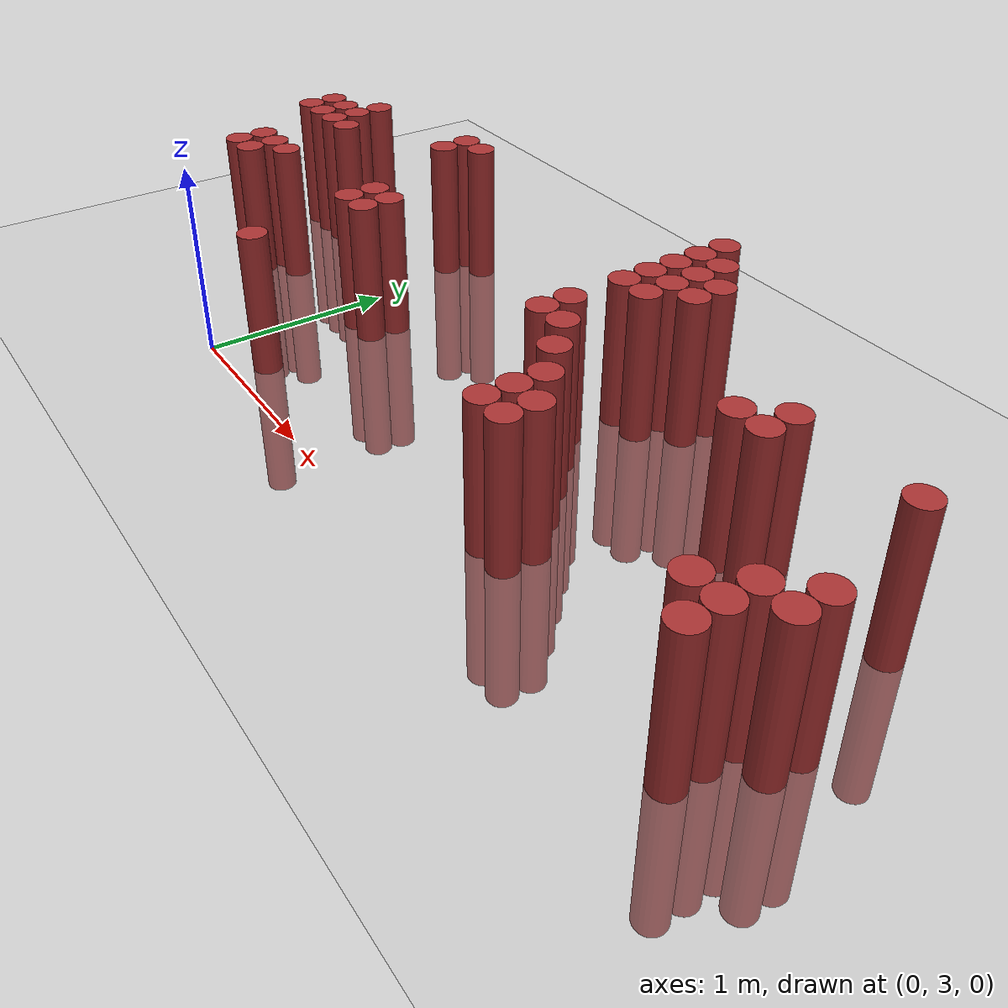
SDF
<sdf version="1.6">
 <world name="default">
  <model name="ground_plane">
   <static>1</static>
   <link name="link">
    <collision name="collision">
     <geometry><plane><normal>0 0 1</normal><size>100 100</size></plane></geometry>
     <surface><friction><ode><mu>100</mu><mu2>50</mu2></ode></friction></surface>
    </collision>
    <visual name="visual">
     <cast_shadows>0</cast_shadows>
     <geometry><plane><normal>0 0 1</normal><size>100 100</size></plane></geometry>
     <material>
      <script><uri>file://media/materials/scripts/gazebo.material</uri><name>Gazebo/Grey</name></script>
     </material>
    </visual>
   </link>
  </model>
  <model name="unit_cylinder_320">
   <static>1</static>
   <pose>-1.175000 4.225000 0.000000 0.000000 0.000000 0.000000</pose>
   <link name="link">
    <inertial>
     <mass>1</mass>
     <inertia><ixx>0.145833</ixx><ixy>0</ixy><ixz>0</ixz><iyy>0.145833</iyy><iyz>0</iyz><izz>0.125</izz></inertia>
    </inertial>
    <collision name="collision">
     <geometry><cylinder><radius>0.075000</radius><length>1.5</length></cylinder></geometry>
    </collision>
    <visual name="visual">
     <geometry><cylinder><radius>0.075000</radius><length>1.5</length></cylinder></geometry>
     <material>
      <ambient>0.648000 0.192000 0.192000 1</ambient>
      <diffuse>0.648000 0.192000 0.192000 1</diffuse>
     </material>
     <material>
      <script><name>Gazebo/Grey</name><uri>file://media/materials/scripts/gazebo.material</uri></script>
     </material>
    </visual>
   </link>
  </model>
  <model name="unit_cylinder_321">
   <static>1</static>
   <pose>-1.175000 4.375000 0.000000 0.000000 0.000000 0.000000</pose>
   <link name="link">
    <inertial>
     <mass>1</mass>
     <inertia><ixx>0.145833</ixx><ixy>0</ixy><ixz>0</ixz><iyy>0.145833</iyy><iyz>0</iyz><izz>0.125</izz></inertia>
    </inertial>
    <collision name="collision">
     <geometry><cylinder><radius>0.075000</radius><length>1.5</length></cylinder></geometry>
    </collision>
    <visual name="visual">
     <geometry><cylinder><radius>0.075000</radius><length>1.5</length></cylinder></geometry>
     <material>
      <ambient>0.648000 0.192000 0.192000 1</ambient>
      <diffuse>0.648000 0.192000 0.192000 1</diffuse>
     </material>
     <material>
      <script><name>Gazebo/Grey</name><uri>file://media/materials/scripts/gazebo.material</uri></script>
     </material>
    </visual>
   </link>
  </model>
  <model name="unit_cylinder_323">
   <static>1</static>
   <pose>-1.025000 4.225000 0.000000 0.000000 0.000000 0.000000</pose>
   <link name="link">
    <inertial>
     <mass>1</mass>
     <inertia><ixx>0.145833</ixx><ixy>0</ixy><ixz>0</ixz><iyy>0.145833</iyy><iyz>0</iyz><izz>0.125</izz></inertia>
    </inertial>
    <collision name="collision">
     <geometry><cylinder><radius>0.075000</radius><length>1.5</length></cylinder></geometry>
    </collision>
    <visual name="visual">
     <geometry><cylinder><radius>0.075000</radius><length>1.5</length></cylinder></geometry>
     <material>
      <ambient>0.648000 0.192000 0.192000 1</ambient>
      <diffuse>0.648000 0.192000 0.192000 1</diffuse>
     </material>
     <material>
      <script><name>Gazebo/Grey</name><uri>file://media/materials/scripts/gazebo.material</uri></script>
     </material>
    </visual>
   </link>
  </model>
  <model name="unit_cylinder_324">
   <static>1</static>
   <pose>-1.025000 4.375000 0.000000 0.000000 0.000000 0.000000</pose>
   <link name="link">
    <inertial>
     <mass>1</mass>
     <inertia><ixx>0.145833</ixx><ixy>0</ixy><ixz>0</ixz><iyy>0.145833</iyy><iyz>0</iyz><izz>0.125</izz></inertia>
    </inertial>
    <collision name="collision">
     <geometry><cylinder><radius>0.075000</radius><length>1.5</length></cylinder></geometry>
    </collision>
    <visual name="visual">
     <geometry><cylinder><radius>0.075000</radius><length>1.5</length></cylinder></geometry>
     <material>
      <ambient>0.648000 0.192000 0.192000 1</ambient>
      <diffuse>0.648000 0.192000 0.192000 1</diffuse>
     </material>
     <material>
      <script><name>Gazebo/Grey</name><uri>file://media/materials/scripts/gazebo.material</uri></script>
     </material>
    </visual>
   </link>
  </model>
  <model name="unit_cylinder_328">
   <static>1</static>
   <pose>-0.875000 3.625000 0.000000 0.000000 0.000000 0.000000</pose>
   <link name="link">
    <inertial>
     <mass>1</mass>
     <inertia><ixx>0.145833</ixx><ixy>0</ixy><ixz>0</ixz><iyy>0.145833</iyy><iyz>0</iyz><izz>0.125</izz></inertia>
    </inertial>
    <collision name="collision">
     <geometry><cylinder><radius>0.075000</radius><length>1.5</length></cylinder></geometry>
    </collision>
    <visual name="visual">
     <geometry><cylinder><radius>0.075000</radius><length>1.5</length></cylinder></geometry>
     <material>
      <ambient>0.648000 0.192000 0.192000 1</ambient>
      <diffuse>0.648000 0.192000 0.192000 1</diffuse>
     </material>
     <material>
      <script><name>Gazebo/Grey</name><uri>file://media/materials/scripts/gazebo.material</uri></script>
     </material>
    </visual>
   </link>
  </model>
  <model name="unit_cylinder_329">
   <static>1</static>
   <pose>-0.875000 3.775000 0.000000 0.000000 0.000000 0.000000</pose>
   <link name="link">
    <inertial>
     <mass>1</mass>
     <inertia><ixx>0.145833</ixx><ixy>0</ixy><ixz>0</ixz><iyy>0.145833</iyy><iyz>0</iyz><izz>0.125</izz></inertia>
    </inertial>
    <collision name="collision">
     <geometry><cylinder><radius>0.075000</radius><length>1.5</length></cylinder></geometry>
    </collision>
    <visual name="visual">
     <geometry><cylinder><radius>0.075000</radius><length>1.5</length></cylinder></geometry>
     <material>
      <ambient>0.648000 0.192000 0.192000 1</ambient>
      <diffuse>0.648000 0.192000 0.192000 1</diffuse>
     </material>
     <material>
      <script><name>Gazebo/Grey</name><uri>file://media/materials/scripts/gazebo.material</uri></script>
     </material>
    </visual>
   </link>
  </model>
  <model name="unit_cylinder_330">
   <static>1</static>
   <pose>-0.875000 4.225000 0.000000 0.000000 0.000000 0.000000</pose>
   <link name="link">
    <inertial>
     <mass>1</mass>
     <inertia><ixx>0.145833</ixx><ixy>0</ixy><ixz>0</ixz><iyy>0.145833</iyy><iyz>0</iyz><izz>0.125</izz></inertia>
    </inertial>
    <collision name="collision">
     <geometry><cylinder><radius>0.075000</radius><length>1.5</length></cylinder></geometry>
    </collision>
    <visual name="visual">
     <geometry><cylinder><radius>0.075000</radius><length>1.5</length></cylinder></geometry>
     <material>
      <ambient>0.648000 0.192000 0.192000 1</ambient>
      <diffuse>0.648000 0.192000 0.192000 1</diffuse>
     </material>
     <material>
      <script><name>Gazebo/Grey</name><uri>file://media/materials/scripts/gazebo.material</uri></script>
     </material>
    </visual>
   </link>
  </model>
  <model name="unit_cylinder_331">
   <static>1</static>
   <pose>-0.875000 4.375000 0.000000 0.000000 0.000000 0.000000</pose>
   <link name="link">
    <inertial>
     <mass>1</mass>
     <inertia><ixx>0.145833</ixx><ixy>0</ixy><ixz>0</ixz><iyy>0.145833</iyy><iyz>0</iyz><izz>0.125</izz></inertia>
    </inertial>
    <collision name="collision">
     <geometry><cylinder><radius>0.075000</radius><length>1.5</length></cylinder></geometry>
    </collision>
    <visual name="visual">
     <geometry><cylinder><radius>0.075000</radius><length>1.5</length></cylinder></geometry>
     <material>
      <ambient>0.648000 0.192000 0.192000 1</ambient>
      <diffuse>0.648000 0.192000 0.192000 1</diffuse>
     </material>
     <material>
      <script><name>Gazebo/Grey</name><uri>file://media/materials/scripts/gazebo.material</uri></script>
     </material>
    </visual>
   </link>
  </model>
  <model name="unit_cylinder_332">
   <static>1</static>
   <pose>-0.875000 4.525000 0.000000 0.000000 0.000000 0.000000</pose>
   <link name="link">
    <inertial>
     <mass>1</mass>
     <inertia><ixx>0.145833</ixx><ixy>0</ixy><ixz>0</ixz><iyy>0.145833</iyy><iyz>0</iyz><izz>0.125</izz></inertia>
    </inertial>
    <collision name="collision">
     <geometry><cylinder><radius>0.075000</radius><length>1.5</length></cylinder></geometry>
    </collision>
    <visual name="visual">
     <geometry><cylinder><radius>0.075000</radius><length>1.5</length></cylinder></geometry>
     <material>
      <ambient>0.648000 0.192000 0.192000 1</ambient>
      <diffuse>0.648000 0.192000 0.192000 1</diffuse>
     </material>
     <material>
      <script><name>Gazebo/Grey</name><uri>file://media/materials/scripts/gazebo.material</uri></script>
     </material>
    </visual>
   </link>
  </model>
  <model name="unit_cylinder_335">
   <static>1</static>
   <pose>-0.725000 3.625000 0.000000 0.000000 0.000000 0.000000</pose>
   <link name="link">
    <inertial>
     <mass>1</mass>
     <inertia><ixx>0.145833</ixx><ixy>0</ixy><ixz>0</ixz><iyy>0.145833</iyy><iyz>0</iyz><izz>0.125</izz></inertia>
    </inertial>
    <collision name="collision">
     <geometry><cylinder><radius>0.075000</radius><length>1.5</length></cylinder></geometry>
    </collision>
    <visual name="visual">
     <geometry><cylinder><radius>0.075000</radius><length>1.5</length></cylinder></geometry>
     <material>
      <ambient>0.648000 0.192000 0.192000 1</ambient>
      <diffuse>0.648000 0.192000 0.192000 1</diffuse>
     </material>
     <material>
      <script><name>Gazebo/Grey</name><uri>file://media/materials/scripts/gazebo.material</uri></script>
     </material>
    </visual>
   </link>
  </model>
  <model name="unit_cylinder_336">
   <static>1</static>
   <pose>-0.725000 3.775000 0.000000 0.000000 0.000000 0.000000</pose>
   <link name="link">
    <inertial>
     <mass>1</mass>
     <inertia><ixx>0.145833</ixx><ixy>0</ixy><ixz>0</ixz><iyy>0.145833</iyy><iyz>0</iyz><izz>0.125</izz></inertia>
    </inertial>
    <collision name="collision">
     <geometry><cylinder><radius>0.075000</radius><length>1.5</length></cylinder></geometry>
    </collision>
    <visual name="visual">
     <geometry><cylinder><radius>0.075000</radius><length>1.5</length></cylinder></geometry>
     <material>
      <ambient>0.648000 0.192000 0.192000 1</ambient>
      <diffuse>0.648000 0.192000 0.192000 1</diffuse>
     </material>
     <material>
      <script><name>Gazebo/Grey</name><uri>file://media/materials/scripts/gazebo.material</uri></script>
     </material>
    </visual>
   </link>
  </model>
  <model name="unit_cylinder_337">
   <static>1</static>
   <pose>-0.725000 4.225000 0.000000 0.000000 0.000000 0.000000</pose>
   <link name="link">
    <inertial>
     <mass>1</mass>
     <inertia><ixx>0.145833</ixx><ixy>0</ixy><ixz>0</ixz><iyy>0.145833</iyy><iyz>0</iyz><izz>0.125</izz></inertia>
    </inertial>
    <collision name="collision">
     <geometry><cylinder><radius>0.075000</radius><length>1.5</length></cylinder></geometry>
    </collision>
    <visual name="visual">
     <geometry><cylinder><radius>0.075000</radius><length>1.5</length></cylinder></geometry>
     <material>
      <ambient>0.648000 0.192000 0.192000 1</ambient>
      <diffuse>0.648000 0.192000 0.192000 1</diffuse>
     </material>
     <material>
      <script><name>Gazebo/Grey</name><uri>file://media/materials/scripts/gazebo.material</uri></script>
     </material>
    </visual>
   </link>
  </model>
  <model name="unit_cylinder_339">
   <static>1</static>
   <pose>-0.575000 3.775000 0.000000 0.000000 0.000000 0.000000</pose>
   <link name="link">
    <inertial>
     <mass>1</mass>
     <inertia><ixx>0.145833</ixx><ixy>0</ixy><ixz>0</ixz><iyy>0.145833</iyy><iyz>0</iyz><izz>0.125</izz></inertia>
    </inertial>
    <collision name="collision">
     <geometry><cylinder><radius>0.075000</radius><length>1.5</length></cylinder></geometry>
    </collision>
    <visual name="visual">
     <geometry><cylinder><radius>0.075000</radius><length>1.5</length></cylinder></geometry>
     <material>
      <ambient>0.648000 0.192000 0.192000 1</ambient>
      <diffuse>0.648000 0.192000 0.192000 1</diffuse>
     </material>
     <material>
      <script><name>Gazebo/Grey</name><uri>file://media/materials/scripts/gazebo.material</uri></script>
     </material>
    </visual>
   </link>
  </model>
  <model name="unit_cylinder_348">
   <static>1</static>
   <pose>-0.125000 4.525000 0.000000 0.000000 0.000000 0.000000</pose>
   <link name="link">
    <inertial>
     <mass>1</mass>
     <inertia><ixx>0.145833</ixx><ixy>0</ixy><ixz>0</ixz><iyy>0.145833</iyy><iyz>0</iyz><izz>0.125</izz></inertia>
    </inertial>
    <collision name="collision">
     <geometry><cylinder><radius>0.075000</radius><length>1.5</length></cylinder></geometry>
    </collision>
    <visual name="visual">
     <geometry><cylinder><radius>0.075000</radius><length>1.5</length></cylinder></geometry>
     <material>
      <ambient>0.648000 0.192000 0.192000 1</ambient>
      <diffuse>0.648000 0.192000 0.192000 1</diffuse>
     </material>
     <material>
      <script><name>Gazebo/Grey</name><uri>file://media/materials/scripts/gazebo.material</uri></script>
     </material>
    </visual>
   </link>
  </model>
  <model name="unit_cylinder_349">
   <static>1</static>
   <pose>-0.125000 4.675000 0.000000 0.000000 0.000000 0.000000</pose>
   <link name="link">
    <inertial>
     <mass>1</mass>
     <inertia><ixx>0.145833</ixx><ixy>0</ixy><ixz>0</ixz><iyy>0.145833</iyy><iyz>0</iyz><izz>0.125</izz></inertia>
    </inertial>
    <collision name="collision">
     <geometry><cylinder><radius>0.075000</radius><length>1.5</length></cylinder></geometry>
    </collision>
    <visual name="visual">
     <geometry><cylinder><radius>0.075000</radius><length>1.5</length></cylinder></geometry>
     <material>
      <ambient>0.648000 0.192000 0.192000 1</ambient>
      <diffuse>0.648000 0.192000 0.192000 1</diffuse>
     </material>
     <material>
      <script><name>Gazebo/Grey</name><uri>file://media/materials/scripts/gazebo.material</uri></script>
     </material>
    </visual>
   </link>
  </model>
  <model name="unit_cylinder_351">
   <static>1</static>
   <pose>0.025000 4.675000 0.000000 0.000000 0.000000 0.000000</pose>
   <link name="link">
    <inertial>
     <mass>1</mass>
     <inertia><ixx>0.145833</ixx><ixy>0</ixy><ixz>0</ixz><iyy>0.145833</iyy><iyz>0</iyz><izz>0.125</izz></inertia>
    </inertial>
    <collision name="collision">
     <geometry><cylinder><radius>0.075000</radius><length>1.5</length></cylinder></geometry>
    </collision>
    <visual name="visual">
     <geometry><cylinder><radius>0.075000</radius><length>1.5</length></cylinder></geometry>
     <material>
      <ambient>0.648000 0.192000 0.192000 1</ambient>
      <diffuse>0.648000 0.192000 0.192000 1</diffuse>
     </material>
     <material>
      <script><name>Gazebo/Grey</name><uri>file://media/materials/scripts/gazebo.material</uri></script>
     </material>
    </visual>
   </link>
  </model>
  <model name="unit_cylinder_354">
   <static>1</static>
   <pose>0.175000 3.775000 0.000000 0.000000 0.000000 0.000000</pose>
   <link name="link">
    <inertial>
     <mass>1</mass>
     <inertia><ixx>0.145833</ixx><ixy>0</ixy><ixz>0</ixz><iyy>0.145833</iyy><iyz>0</iyz><izz>0.125</izz></inertia>
    </inertial>
    <collision name="collision">
     <geometry><cylinder><radius>0.075000</radius><length>1.5</length></cylinder></geometry>
    </collision>
    <visual name="visual">
     <geometry><cylinder><radius>0.075000</radius><length>1.5</length></cylinder></geometry>
     <material>
      <ambient>0.648000 0.192000 0.192000 1</ambient>
      <diffuse>0.648000 0.192000 0.192000 1</diffuse>
     </material>
     <material>
      <script><name>Gazebo/Grey</name><uri>file://media/materials/scripts/gazebo.material</uri></script>
     </material>
    </visual>
   </link>
  </model>
  <model name="unit_cylinder_355">
   <static>1</static>
   <pose>0.175000 3.925000 0.000000 0.000000 0.000000 0.000000</pose>
   <link name="link">
    <inertial>
     <mass>1</mass>
     <inertia><ixx>0.145833</ixx><ixy>0</ixy><ixz>0</ixz><iyy>0.145833</iyy><iyz>0</iyz><izz>0.125</izz></inertia>
    </inertial>
    <collision name="collision">
     <geometry><cylinder><radius>0.075000</radius><length>1.5</length></cylinder></geometry>
    </collision>
    <visual name="visual">
     <geometry><cylinder><radius>0.075000</radius><length>1.5</length></cylinder></geometry>
     <material>
      <ambient>0.648000 0.192000 0.192000 1</ambient>
      <diffuse>0.648000 0.192000 0.192000 1</diffuse>
     </material>
     <material>
      <script><name>Gazebo/Grey</name><uri>file://media/materials/scripts/gazebo.material</uri></script>
     </material>
    </visual>
   </link>
  </model>
  <model name="unit_cylinder_359">
   <static>1</static>
   <pose>0.325000 3.175000 0.000000 0.000000 0.000000 0.000000</pose>
   <link name="link">
    <inertial>
     <mass>1</mass>
     <inertia><ixx>0.145833</ixx><ixy>0</ixy><ixz>0</ixz><iyy>0.145833</iyy><iyz>0</iyz><izz>0.125</izz></inertia>
    </inertial>
    <collision name="collision">
     <geometry><cylinder><radius>0.075000</radius><length>1.5</length></cylinder></geometry>
    </collision>
    <visual name="visual">
     <geometry><cylinder><radius>0.075000</radius><length>1.5</length></cylinder></geometry>
     <material>
      <ambient>0.648000 0.192000 0.192000 1</ambient>
      <diffuse>0.648000 0.192000 0.192000 1</diffuse>
     </material>
     <material>
      <script><name>Gazebo/Grey</name><uri>file://media/materials/scripts/gazebo.material</uri></script>
     </material>
    </visual>
   </link>
  </model>
  <model name="unit_cylinder_360">
   <static>1</static>
   <pose>0.325000 3.775000 0.000000 0.000000 0.000000 0.000000</pose>
   <link name="link">
    <inertial>
     <mass>1</mass>
     <inertia><ixx>0.145833</ixx><ixy>0</ixy><ixz>0</ixz><iyy>0.145833</iyy><iyz>0</iyz><izz>0.125</izz></inertia>
    </inertial>
    <collision name="collision">
     <geometry><cylinder><radius>0.075000</radius><length>1.5</length></cylinder></geometry>
    </collision>
    <visual name="visual">
     <geometry><cylinder><radius>0.075000</radius><length>1.5</length></cylinder></geometry>
     <material>
      <ambient>0.648000 0.192000 0.192000 1</ambient>
      <diffuse>0.648000 0.192000 0.192000 1</diffuse>
     </material>
     <material>
      <script><name>Gazebo/Grey</name><uri>file://media/materials/scripts/gazebo.material</uri></script>
     </material>
    </visual>
   </link>
  </model>
  <model name="unit_cylinder_361">
   <static>1</static>
   <pose>0.325000 3.925000 0.000000 0.000000 0.000000 0.000000</pose>
   <link name="link">
    <inertial>
     <mass>1</mass>
     <inertia><ixx>0.145833</ixx><ixy>0</ixy><ixz>0</ixz><iyy>0.145833</iyy><iyz>0</iyz><izz>0.125</izz></inertia>
    </inertial>
    <collision name="collision">
     <geometry><cylinder><radius>0.075000</radius><length>1.5</length></cylinder></geometry>
    </collision>
    <visual name="visual">
     <geometry><cylinder><radius>0.075000</radius><length>1.5</length></cylinder></geometry>
     <material>
      <ambient>0.648000 0.192000 0.192000 1</ambient>
      <diffuse>0.648000 0.192000 0.192000 1</diffuse>
     </material>
     <material>
      <script><name>Gazebo/Grey</name><uri>file://media/materials/scripts/gazebo.material</uri></script>
     </material>
    </visual>
   </link>
  </model>
  <model name="unit_cylinder_389">
   <static>1</static>
   <pose>1.675000 3.925000 0.000000 0.000000 0.000000 0.000000</pose>
   <link name="link">
    <inertial>
     <mass>1</mass>
     <inertia><ixx>0.145833</ixx><ixy>0</ixy><ixz>0</ixz><iyy>0.145833</iyy><iyz>0</iyz><izz>0.125</izz></inertia>
    </inertial>
    <collision name="collision">
     <geometry><cylinder><radius>0.075000</radius><length>1.5</length></cylinder></geometry>
    </collision>
    <visual name="visual">
     <geometry><cylinder><radius>0.075000</radius><length>1.5</length></cylinder></geometry>
     <material>
      <ambient>0.648000 0.192000 0.192000 1</ambient>
      <diffuse>0.648000 0.192000 0.192000 1</diffuse>
     </material>
     <material>
      <script><name>Gazebo/Grey</name><uri>file://media/materials/scripts/gazebo.material</uri></script>
     </material>
    </visual>
   </link>
  </model>
  <model name="unit_cylinder_390">
   <static>1</static>
   <pose>1.675000 4.075000 0.000000 0.000000 0.000000 0.000000</pose>
   <link name="link">
    <inertial>
     <mass>1</mass>
     <inertia><ixx>0.145833</ixx><ixy>0</ixy><ixz>0</ixz><iyy>0.145833</iyy><iyz>0</iyz><izz>0.125</izz></inertia>
    </inertial>
    <collision name="collision">
     <geometry><cylinder><radius>0.075000</radius><length>1.5</length></cylinder></geometry>
    </collision>
    <visual name="visual">
     <geometry><cylinder><radius>0.075000</radius><length>1.5</length></cylinder></geometry>
     <material>
      <ambient>0.648000 0.192000 0.192000 1</ambient>
      <diffuse>0.648000 0.192000 0.192000 1</diffuse>
     </material>
     <material>
      <script><name>Gazebo/Grey</name><uri>file://media/materials/scripts/gazebo.material</uri></script>
     </material>
    </visual>
   </link>
  </model>
  <model name="unit_cylinder_391">
   <static>1</static>
   <pose>1.675000 4.375000 0.000000 0.000000 0.000000 0.000000</pose>
   <link name="link">
    <inertial>
     <mass>1</mass>
     <inertia><ixx>0.145833</ixx><ixy>0</ixy><ixz>0</ixz><iyy>0.145833</iyy><iyz>0</iyz><izz>0.125</izz></inertia>
    </inertial>
    <collision name="collision">
     <geometry><cylinder><radius>0.075000</radius><length>1.5</length></cylinder></geometry>
    </collision>
    <visual name="visual">
     <geometry><cylinder><radius>0.075000</radius><length>1.5</length></cylinder></geometry>
     <material>
      <ambient>0.648000 0.192000 0.192000 1</ambient>
      <diffuse>0.648000 0.192000 0.192000 1</diffuse>
     </material>
     <material>
      <script><name>Gazebo/Grey</name><uri>file://media/materials/scripts/gazebo.material</uri></script>
     </material>
    </visual>
   </link>
  </model>
  <model name="unit_cylinder_392">
   <static>1</static>
   <pose>1.675000 4.525000 0.000000 0.000000 0.000000 0.000000</pose>
   <link name="link">
    <inertial>
     <mass>1</mass>
     <inertia><ixx>0.145833</ixx><ixy>0</ixy><ixz>0</ixz><iyy>0.145833</iyy><iyz>0</iyz><izz>0.125</izz></inertia>
    </inertial>
    <collision name="collision">
     <geometry><cylinder><radius>0.075000</radius><length>1.5</length></cylinder></geometry>
    </collision>
    <visual name="visual">
     <geometry><cylinder><radius>0.075000</radius><length>1.5</length></cylinder></geometry>
     <material>
      <ambient>0.648000 0.192000 0.192000 1</ambient>
      <diffuse>0.648000 0.192000 0.192000 1</diffuse>
     </material>
     <material>
      <script><name>Gazebo/Grey</name><uri>file://media/materials/scripts/gazebo.material</uri></script>
     </material>
    </visual>
   </link>
  </model>
  <model name="unit_cylinder_393">
   <static>1</static>
   <pose>1.675000 4.675000 0.000000 0.000000 0.000000 0.000000</pose>
   <link name="link">
    <inertial>
     <mass>1</mass>
     <inertia><ixx>0.145833</ixx><ixy>0</ixy><ixz>0</ixz><iyy>0.145833</iyy><iyz>0</iyz><izz>0.125</izz></inertia>
    </inertial>
    <collision name="collision">
     <geometry><cylinder><radius>0.075000</radius><length>1.5</length></cylinder></geometry>
    </collision>
    <visual name="visual">
     <geometry><cylinder><radius>0.075000</radius><length>1.5</length></cylinder></geometry>
     <material>
      <ambient>0.648000 0.192000 0.192000 1</ambient>
      <diffuse>0.648000 0.192000 0.192000 1</diffuse>
     </material>
     <material>
      <script><name>Gazebo/Grey</name><uri>file://media/materials/scripts/gazebo.material</uri></script>
     </material>
    </visual>
   </link>
  </model>
  <model name="unit_cylinder_394">
   <static>1</static>
   <pose>1.675000 4.825000 0.000000 0.000000 0.000000 0.000000</pose>
   <link name="link">
    <inertial>
     <mass>1</mass>
     <inertia><ixx>0.145833</ixx><ixy>0</ixy><ixz>0</ixz><iyy>0.145833</iyy><iyz>0</iyz><izz>0.125</izz></inertia>
    </inertial>
    <collision name="collision">
     <geometry><cylinder><radius>0.075000</radius><length>1.5</length></cylinder></geometry>
    </collision>
    <visual name="visual">
     <geometry><cylinder><radius>0.075000</radius><length>1.5</length></cylinder></geometry>
     <material>
      <ambient>0.648000 0.192000 0.192000 1</ambient>
      <diffuse>0.648000 0.192000 0.192000 1</diffuse>
     </material>
     <material>
      <script><name>Gazebo/Grey</name><uri>file://media/materials/scripts/gazebo.material</uri></script>
     </material>
    </visual>
   </link>
  </model>
  <model name="unit_cylinder_395">
   <static>1</static>
   <pose>1.675000 4.975000 0.000000 0.000000 0.000000 0.000000</pose>
   <link name="link">
    <inertial>
     <mass>1</mass>
     <inertia><ixx>0.145833</ixx><ixy>0</ixy><ixz>0</ixz><iyy>0.145833</iyy><iyz>0</iyz><izz>0.125</izz></inertia>
    </inertial>
    <collision name="collision">
     <geometry><cylinder><radius>0.075000</radius><length>1.5</length></cylinder></geometry>
    </collision>
    <visual name="visual">
     <geometry><cylinder><radius>0.075000</radius><length>1.5</length></cylinder></geometry>
     <material>
      <ambient>0.648000 0.192000 0.192000 1</ambient>
      <diffuse>0.648000 0.192000 0.192000 1</diffuse>
     </material>
     <material>
      <script><name>Gazebo/Grey</name><uri>file://media/materials/scripts/gazebo.material</uri></script>
     </material>
    </visual>
   </link>
  </model>
  <model name="unit_cylinder_399">
   <static>1</static>
   <pose>1.825000 3.925000 0.000000 0.000000 0.000000 0.000000</pose>
   <link name="link">
    <inertial>
     <mass>1</mass>
     <inertia><ixx>0.145833</ixx><ixy>0</ixy><ixz>0</ixz><iyy>0.145833</iyy><iyz>0</iyz><izz>0.125</izz></inertia>
    </inertial>
    <collision name="collision">
     <geometry><cylinder><radius>0.075000</radius><length>1.5</length></cylinder></geometry>
    </collision>
    <visual name="visual">
     <geometry><cylinder><radius>0.075000</radius><length>1.5</length></cylinder></geometry>
     <material>
      <ambient>0.648000 0.192000 0.192000 1</ambient>
      <diffuse>0.648000 0.192000 0.192000 1</diffuse>
     </material>
     <material>
      <script><name>Gazebo/Grey</name><uri>file://media/materials/scripts/gazebo.material</uri></script>
     </material>
    </visual>
   </link>
  </model>
  <model name="unit_cylinder_400">
   <static>1</static>
   <pose>1.825000 4.375000 0.000000 0.000000 0.000000 0.000000</pose>
   <link name="link">
    <inertial>
     <mass>1</mass>
     <inertia><ixx>0.145833</ixx><ixy>0</ixy><ixz>0</ixz><iyy>0.145833</iyy><iyz>0</iyz><izz>0.125</izz></inertia>
    </inertial>
    <collision name="collision">
     <geometry><cylinder><radius>0.075000</radius><length>1.5</length></cylinder></geometry>
    </collision>
    <visual name="visual">
     <geometry><cylinder><radius>0.075000</radius><length>1.5</length></cylinder></geometry>
     <material>
      <ambient>0.648000 0.192000 0.192000 1</ambient>
      <diffuse>0.648000 0.192000 0.192000 1</diffuse>
     </material>
     <material>
      <script><name>Gazebo/Grey</name><uri>file://media/materials/scripts/gazebo.material</uri></script>
     </material>
    </visual>
   </link>
  </model>
  <model name="unit_cylinder_401">
   <static>1</static>
   <pose>1.825000 4.525000 0.000000 0.000000 0.000000 0.000000</pose>
   <link name="link">
    <inertial>
     <mass>1</mass>
     <inertia><ixx>0.145833</ixx><ixy>0</ixy><ixz>0</ixz><iyy>0.145833</iyy><iyz>0</iyz><izz>0.125</izz></inertia>
    </inertial>
    <collision name="collision">
     <geometry><cylinder><radius>0.075000</radius><length>1.5</length></cylinder></geometry>
    </collision>
    <visual name="visual">
     <geometry><cylinder><radius>0.075000</radius><length>1.5</length></cylinder></geometry>
     <material>
      <ambient>0.648000 0.192000 0.192000 1</ambient>
      <diffuse>0.648000 0.192000 0.192000 1</diffuse>
     </material>
     <material>
      <script><name>Gazebo/Grey</name><uri>file://media/materials/scripts/gazebo.material</uri></script>
     </material>
    </visual>
   </link>
  </model>
  <model name="unit_cylinder_402">
   <static>1</static>
   <pose>1.825000 4.675000 0.000000 0.000000 0.000000 0.000000</pose>
   <link name="link">
    <inertial>
     <mass>1</mass>
     <inertia><ixx>0.145833</ixx><ixy>0</ixy><ixz>0</ixz><iyy>0.145833</iyy><iyz>0</iyz><izz>0.125</izz></inertia>
    </inertial>
    <collision name="collision">
     <geometry><cylinder><radius>0.075000</radius><length>1.5</length></cylinder></geometry>
    </collision>
    <visual name="visual">
     <geometry><cylinder><radius>0.075000</radius><length>1.5</length></cylinder></geometry>
     <material>
      <ambient>0.648000 0.192000 0.192000 1</ambient>
      <diffuse>0.648000 0.192000 0.192000 1</diffuse>
     </material>
     <material>
      <script><name>Gazebo/Grey</name><uri>file://media/materials/scripts/gazebo.material</uri></script>
     </material>
    </visual>
   </link>
  </model>
  <model name="unit_cylinder_403">
   <static>1</static>
   <pose>1.825000 4.825000 0.000000 0.000000 0.000000 0.000000</pose>
   <link name="link">
    <inertial>
     <mass>1</mass>
     <inertia><ixx>0.145833</ixx><ixy>0</ixy><ixz>0</ixz><iyy>0.145833</iyy><iyz>0</iyz><izz>0.125</izz></inertia>
    </inertial>
    <collision name="collision">
     <geometry><cylinder><radius>0.075000</radius><length>1.5</length></cylinder></geometry>
    </collision>
    <visual name="visual">
     <geometry><cylinder><radius>0.075000</radius><length>1.5</length></cylinder></geometry>
     <material>
      <ambient>0.648000 0.192000 0.192000 1</ambient>
      <diffuse>0.648000 0.192000 0.192000 1</diffuse>
     </material>
     <material>
      <script><name>Gazebo/Grey</name><uri>file://media/materials/scripts/gazebo.material</uri></script>
     </material>
    </visual>
   </link>
  </model>
  <model name="unit_cylinder_409">
   <static>1</static>
   <pose>1.975000 3.775000 0.000000 0.000000 0.000000 0.000000</pose>
   <link name="link">
    <inertial>
     <mass>1</mass>
     <inertia><ixx>0.145833</ixx><ixy>0</ixy><ixz>0</ixz><iyy>0.145833</iyy><iyz>0</iyz><izz>0.125</izz></inertia>
    </inertial>
    <collision name="collision">
     <geometry><cylinder><radius>0.075000</radius><length>1.5</length></cylinder></geometry>
    </collision>
    <visual name="visual">
     <geometry><cylinder><radius>0.075000</radius><length>1.5</length></cylinder></geometry>
     <material>
      <ambient>0.648000 0.192000 0.192000 1</ambient>
      <diffuse>0.648000 0.192000 0.192000 1</diffuse>
     </material>
     <material>
      <script><name>Gazebo/Grey</name><uri>file://media/materials/scripts/gazebo.material</uri></script>
     </material>
    </visual>
   </link>
  </model>
  <model name="unit_cylinder_410">
   <static>1</static>
   <pose>1.975000 4.525000 0.000000 0.000000 0.000000 0.000000</pose>
   <link name="link">
    <inertial>
     <mass>1</mass>
     <inertia><ixx>0.145833</ixx><ixy>0</ixy><ixz>0</ixz><iyy>0.145833</iyy><iyz>0</iyz><izz>0.125</izz></inertia>
    </inertial>
    <collision name="collision">
     <geometry><cylinder><radius>0.075000</radius><length>1.5</length></cylinder></geometry>
    </collision>
    <visual name="visual">
     <geometry><cylinder><radius>0.075000</radius><length>1.5</length></cylinder></geometry>
     <material>
      <ambient>0.648000 0.192000 0.192000 1</ambient>
      <diffuse>0.648000 0.192000 0.192000 1</diffuse>
     </material>
     <material>
      <script><name>Gazebo/Grey</name><uri>file://media/materials/scripts/gazebo.material</uri></script>
     </material>
    </visual>
   </link>
  </model>
  <model name="unit_cylinder_411">
   <static>1</static>
   <pose>1.975000 4.675000 0.000000 0.000000 0.000000 0.000000</pose>
   <link name="link">
    <inertial>
     <mass>1</mass>
     <inertia><ixx>0.145833</ixx><ixy>0</ixy><ixz>0</ixz><iyy>0.145833</iyy><iyz>0</iyz><izz>0.125</izz></inertia>
    </inertial>
    <collision name="collision">
     <geometry><cylinder><radius>0.075000</radius><length>1.5</length></cylinder></geometry>
    </collision>
    <visual name="visual">
     <geometry><cylinder><radius>0.075000</radius><length>1.5</length></cylinder></geometry>
     <material>
      <ambient>0.648000 0.192000 0.192000 1</ambient>
      <diffuse>0.648000 0.192000 0.192000 1</diffuse>
     </material>
     <material>
      <script><name>Gazebo/Grey</name><uri>file://media/materials/scripts/gazebo.material</uri></script>
     </material>
    </visual>
   </link>
  </model>
  <model name="unit_cylinder_416">
   <static>1</static>
   <pose>2.125000 3.325000 0.000000 0.000000 0.000000 0.000000</pose>
   <link name="link">
    <inertial>
     <mass>1</mass>
     <inertia><ixx>0.145833</ixx><ixy>0</ixy><ixz>0</ixz><iyy>0.145833</iyy><iyz>0</iyz><izz>0.125</izz></inertia>
    </inertial>
    <collision name="collision">
     <geometry><cylinder><radius>0.075000</radius><length>1.5</length></cylinder></geometry>
    </collision>
    <visual name="visual">
     <geometry><cylinder><radius>0.075000</radius><length>1.5</length></cylinder></geometry>
     <material>
      <ambient>0.648000 0.192000 0.192000 1</ambient>
      <diffuse>0.648000 0.192000 0.192000 1</diffuse>
     </material>
     <material>
      <script><name>Gazebo/Grey</name><uri>file://media/materials/scripts/gazebo.material</uri></script>
     </material>
    </visual>
   </link>
  </model>
  <model name="unit_cylinder_417">
   <static>1</static>
   <pose>2.125000 3.475000 0.000000 0.000000 0.000000 0.000000</pose>
   <link name="link">
    <inertial>
     <mass>1</mass>
     <inertia><ixx>0.145833</ixx><ixy>0</ixy><ixz>0</ixz><iyy>0.145833</iyy><iyz>0</iyz><izz>0.125</izz></inertia>
    </inertial>
    <collision name="collision">
     <geometry><cylinder><radius>0.075000</radius><length>1.5</length></cylinder></geometry>
    </collision>
    <visual name="visual">
     <geometry><cylinder><radius>0.075000</radius><length>1.5</length></cylinder></geometry>
     <material>
      <ambient>0.648000 0.192000 0.192000 1</ambient>
      <diffuse>0.648000 0.192000 0.192000 1</diffuse>
     </material>
     <material>
      <script><name>Gazebo/Grey</name><uri>file://media/materials/scripts/gazebo.material</uri></script>
     </material>
    </visual>
   </link>
  </model>
  <model name="unit_cylinder_418">
   <static>1</static>
   <pose>2.125000 3.625000 0.000000 0.000000 0.000000 0.000000</pose>
   <link name="link">
    <inertial>
     <mass>1</mass>
     <inertia><ixx>0.145833</ixx><ixy>0</ixy><ixz>0</ixz><iyy>0.145833</iyy><iyz>0</iyz><izz>0.125</izz></inertia>
    </inertial>
    <collision name="collision">
     <geometry><cylinder><radius>0.075000</radius><length>1.5</length></cylinder></geometry>
    </collision>
    <visual name="visual">
     <geometry><cylinder><radius>0.075000</radius><length>1.5</length></cylinder></geometry>
     <material>
      <ambient>0.648000 0.192000 0.192000 1</ambient>
      <diffuse>0.648000 0.192000 0.192000 1</diffuse>
     </material>
     <material>
      <script><name>Gazebo/Grey</name><uri>file://media/materials/scripts/gazebo.material</uri></script>
     </material>
    </visual>
   </link>
  </model>
  <model name="unit_cylinder_420">
   <static>1</static>
   <pose>2.275000 3.325000 0.000000 0.000000 0.000000 0.000000</pose>
   <link name="link">
    <inertial>
     <mass>1</mass>
     <inertia><ixx>0.145833</ixx><ixy>0</ixy><ixz>0</ixz><iyy>0.145833</iyy><iyz>0</iyz><izz>0.125</izz></inertia>
    </inertial>
    <collision name="collision">
     <geometry><cylinder><radius>0.075000</radius><length>1.5</length></cylinder></geometry>
    </collision>
    <visual name="visual">
     <geometry><cylinder><radius>0.075000</radius><length>1.5</length></cylinder></geometry>
     <material>
      <ambient>0.648000 0.192000 0.192000 1</ambient>
      <diffuse>0.648000 0.192000 0.192000 1</diffuse>
     </material>
     <material>
      <script><name>Gazebo/Grey</name><uri>file://media/materials/scripts/gazebo.material</uri></script>
     </material>
    </visual>
   </link>
  </model>
  <model name="unit_cylinder_421">
   <static>1</static>
   <pose>2.275000 3.475000 0.000000 0.000000 0.000000 0.000000</pose>
   <link name="link">
    <inertial>
     <mass>1</mass>
     <inertia><ixx>0.145833</ixx><ixy>0</ixy><ixz>0</ixz><iyy>0.145833</iyy><iyz>0</iyz><izz>0.125</izz></inertia>
    </inertial>
    <collision name="collision">
     <geometry><cylinder><radius>0.075000</radius><length>1.5</length></cylinder></geometry>
    </collision>
    <visual name="visual">
     <geometry><cylinder><radius>0.075000</radius><length>1.5</length></cylinder></geometry>
     <material>
      <ambient>0.648000 0.192000 0.192000 1</ambient>
      <diffuse>0.648000 0.192000 0.192000 1</diffuse>
     </material>
     <material>
      <script><name>Gazebo/Grey</name><uri>file://media/materials/scripts/gazebo.material</uri></script>
     </material>
    </visual>
   </link>
  </model>
  <model name="unit_cylinder_427">
   <static>1</static>
   <pose>2.725000 4.075000 0.000000 0.000000 0.000000 0.000000</pose>
   <link name="link">
    <inertial>
     <mass>1</mass>
     <inertia><ixx>0.145833</ixx><ixy>0</ixy><ixz>0</ixz><iyy>0.145833</iyy><iyz>0</iyz><izz>0.125</izz></inertia>
    </inertial>
    <collision name="collision">
     <geometry><cylinder><radius>0.075000</radius><length>1.5</length></cylinder></geometry>
    </collision>
    <visual name="visual">
     <geometry><cylinder><radius>0.075000</radius><length>1.5</length></cylinder></geometry>
     <material>
      <ambient>0.648000 0.192000 0.192000 1</ambient>
      <diffuse>0.648000 0.192000 0.192000 1</diffuse>
     </material>
     <material>
      <script><name>Gazebo/Grey</name><uri>file://media/materials/scripts/gazebo.material</uri></script>
     </material>
    </visual>
   </link>
  </model>
  <model name="unit_cylinder_432">
   <static>1</static>
   <pose>2.875000 4.075000 0.000000 0.000000 0.000000 0.000000</pose>
   <link name="link">
    <inertial>
     <mass>1</mass>
     <inertia><ixx>0.145833</ixx><ixy>0</ixy><ixz>0</ixz><iyy>0.145833</iyy><iyz>0</iyz><izz>0.125</izz></inertia>
    </inertial>
    <collision name="collision">
     <geometry><cylinder><radius>0.075000</radius><length>1.5</length></cylinder></geometry>
    </collision>
    <visual name="visual">
     <geometry><cylinder><radius>0.075000</radius><length>1.5</length></cylinder></geometry>
     <material>
      <ambient>0.648000 0.192000 0.192000 1</ambient>
      <diffuse>0.648000 0.192000 0.192000 1</diffuse>
     </material>
     <material>
      <script><name>Gazebo/Grey</name><uri>file://media/materials/scripts/gazebo.material</uri></script>
     </material>
    </visual>
   </link>
  </model>
  <model name="unit_cylinder_433">
   <static>1</static>
   <pose>2.875000 4.225000 0.000000 0.000000 0.000000 0.000000</pose>
   <link name="link">
    <inertial>
     <mass>1</mass>
     <inertia><ixx>0.145833</ixx><ixy>0</ixy><ixz>0</ixz><iyy>0.145833</iyy><iyz>0</iyz><izz>0.125</izz></inertia>
    </inertial>
    <collision name="collision">
     <geometry><cylinder><radius>0.075000</radius><length>1.5</length></cylinder></geometry>
    </collision>
    <visual name="visual">
     <geometry><cylinder><radius>0.075000</radius><length>1.5</length></cylinder></geometry>
     <material>
      <ambient>0.648000 0.192000 0.192000 1</ambient>
      <diffuse>0.648000 0.192000 0.192000 1</diffuse>
     </material>
     <material>
      <script><name>Gazebo/Grey</name><uri>file://media/materials/scripts/gazebo.material</uri></script>
     </material>
    </visual>
   </link>
  </model>
  <model name="unit_cylinder_440">
   <static>1</static>
   <pose>3.325000 3.325000 0.000000 0.000000 0.000000 0.000000</pose>
   <link name="link">
    <inertial>
     <mass>1</mass>
     <inertia><ixx>0.145833</ixx><ixy>0</ixy><ixz>0</ixz><iyy>0.145833</iyy><iyz>0</iyz><izz>0.125</izz></inertia>
    </inertial>
    <collision name="collision">
     <geometry><cylinder><radius>0.075000</radius><length>1.5</length></cylinder></geometry>
    </collision>
    <visual name="visual">
     <geometry><cylinder><radius>0.075000</radius><length>1.5</length></cylinder></geometry>
     <material>
      <ambient>0.648000 0.192000 0.192000 1</ambient>
      <diffuse>0.648000 0.192000 0.192000 1</diffuse>
     </material>
     <material>
      <script><name>Gazebo/Grey</name><uri>file://media/materials/scripts/gazebo.material</uri></script>
     </material>
    </visual>
   </link>
  </model>
  <model name="unit_cylinder_443">
   <static>1</static>
   <pose>3.475000 3.175000 0.000000 0.000000 0.000000 0.000000</pose>
   <link name="link">
    <inertial>
     <mass>1</mass>
     <inertia><ixx>0.145833</ixx><ixy>0</ixy><ixz>0</ixz><iyy>0.145833</iyy><iyz>0</iyz><izz>0.125</izz></inertia>
    </inertial>
    <collision name="collision">
     <geometry><cylinder><radius>0.075000</radius><length>1.5</length></cylinder></geometry>
    </collision>
    <visual name="visual">
     <geometry><cylinder><radius>0.075000</radius><length>1.5</length></cylinder></geometry>
     <material>
      <ambient>0.648000 0.192000 0.192000 1</ambient>
      <diffuse>0.648000 0.192000 0.192000 1</diffuse>
     </material>
     <material>
      <script><name>Gazebo/Grey</name><uri>file://media/materials/scripts/gazebo.material</uri></script>
     </material>
    </visual>
   </link>
  </model>
  <model name="unit_cylinder_444">
   <static>1</static>
   <pose>3.475000 3.325000 0.000000 0.000000 0.000000 0.000000</pose>
   <link name="link">
    <inertial>
     <mass>1</mass>
     <inertia><ixx>0.145833</ixx><ixy>0</ixy><ixz>0</ixz><iyy>0.145833</iyy><iyz>0</iyz><izz>0.125</izz></inertia>
    </inertial>
    <collision name="collision">
     <geometry><cylinder><radius>0.075000</radius><length>1.5</length></cylinder></geometry>
    </collision>
    <visual name="visual">
     <geometry><cylinder><radius>0.075000</radius><length>1.5</length></cylinder></geometry>
     <material>
      <ambient>0.648000 0.192000 0.192000 1</ambient>
      <diffuse>0.648000 0.192000 0.192000 1</diffuse>
     </material>
     <material>
      <script><name>Gazebo/Grey</name><uri>file://media/materials/scripts/gazebo.material</uri></script>
     </material>
    </visual>
   </link>
  </model>
  <model name="unit_cylinder_445">
   <static>1</static>
   <pose>3.475000 3.475000 0.000000 0.000000 0.000000 0.000000</pose>
   <link name="link">
    <inertial>
     <mass>1</mass>
     <inertia><ixx>0.145833</ixx><ixy>0</ixy><ixz>0</ixz><iyy>0.145833</iyy><iyz>0</iyz><izz>0.125</izz></inertia>
    </inertial>
    <collision name="collision">
     <geometry><cylinder><radius>0.075000</radius><length>1.5</length></cylinder></geometry>
    </collision>
    <visual name="visual">
     <geometry><cylinder><radius>0.075000</radius><length>1.5</length></cylinder></geometry>
     <material>
      <ambient>0.648000 0.192000 0.192000 1</ambient>
      <diffuse>0.648000 0.192000 0.192000 1</diffuse>
     </material>
     <material>
      <script><name>Gazebo/Grey</name><uri>file://media/materials/scripts/gazebo.material</uri></script>
     </material>
    </visual>
   </link>
  </model>
  <model name="unit_cylinder_446">
   <static>1</static>
   <pose>3.475000 4.225000 0.000000 0.000000 0.000000 0.000000</pose>
   <link name="link">
    <inertial>
     <mass>1</mass>
     <inertia><ixx>0.145833</ixx><ixy>0</ixy><ixz>0</ixz><iyy>0.145833</iyy><iyz>0</iyz><izz>0.125</izz></inertia>
    </inertial>
    <collision name="collision">
     <geometry><cylinder><radius>0.075000</radius><length>1.5</length></cylinder></geometry>
    </collision>
    <visual name="visual">
     <geometry><cylinder><radius>0.075000</radius><length>1.5</length></cylinder></geometry>
     <material>
      <ambient>0.648000 0.192000 0.192000 1</ambient>
      <diffuse>0.648000 0.192000 0.192000 1</diffuse>
     </material>
     <material>
      <script><name>Gazebo/Grey</name><uri>file://media/materials/scripts/gazebo.material</uri></script>
     </material>
    </visual>
   </link>
  </model>
  <model name="unit_cylinder_448">
   <static>1</static>
   <pose>3.625000 3.475000 0.000000 0.000000 0.000000 0.000000</pose>
   <link name="link">
    <inertial>
     <mass>1</mass>
     <inertia><ixx>0.145833</ixx><ixy>0</ixy><ixz>0</ixz><iyy>0.145833</iyy><iyz>0</iyz><izz>0.125</izz></inertia>
    </inertial>
    <collision name="collision">
     <geometry><cylinder><radius>0.075000</radius><length>1.5</length></cylinder></geometry>
    </collision>
    <visual name="visual">
     <geometry><cylinder><radius>0.075000</radius><length>1.5</length></cylinder></geometry>
     <material>
      <ambient>0.648000 0.192000 0.192000 1</ambient>
      <diffuse>0.648000 0.192000 0.192000 1</diffuse>
     </material>
     <material>
      <script><name>Gazebo/Grey</name><uri>file://media/materials/scripts/gazebo.material</uri></script>
     </material>
    </visual>
   </link>
  </model>
  <model name="unit_cylinder_449">
   <static>1</static>
   <pose>3.625000 3.625000 0.000000 0.000000 0.000000 0.000000</pose>
   <link name="link">
    <inertial>
     <mass>1</mass>
     <inertia><ixx>0.145833</ixx><ixy>0</ixy><ixz>0</ixz><iyy>0.145833</iyy><iyz>0</iyz><izz>0.125</izz></inertia>
    </inertial>
    <collision name="collision">
     <geometry><cylinder><radius>0.075000</radius><length>1.5</length></cylinder></geometry>
    </collision>
    <visual name="visual">
     <geometry><cylinder><radius>0.075000</radius><length>1.5</length></cylinder></geometry>
     <material>
      <ambient>0.648000 0.192000 0.192000 1</ambient>
      <diffuse>0.648000 0.192000 0.192000 1</diffuse>
     </material>
     <material>
      <script><name>Gazebo/Grey</name><uri>file://media/materials/scripts/gazebo.material</uri></script>
     </material>
    </visual>
   </link>
  </model>
 </world>
</sdf>
